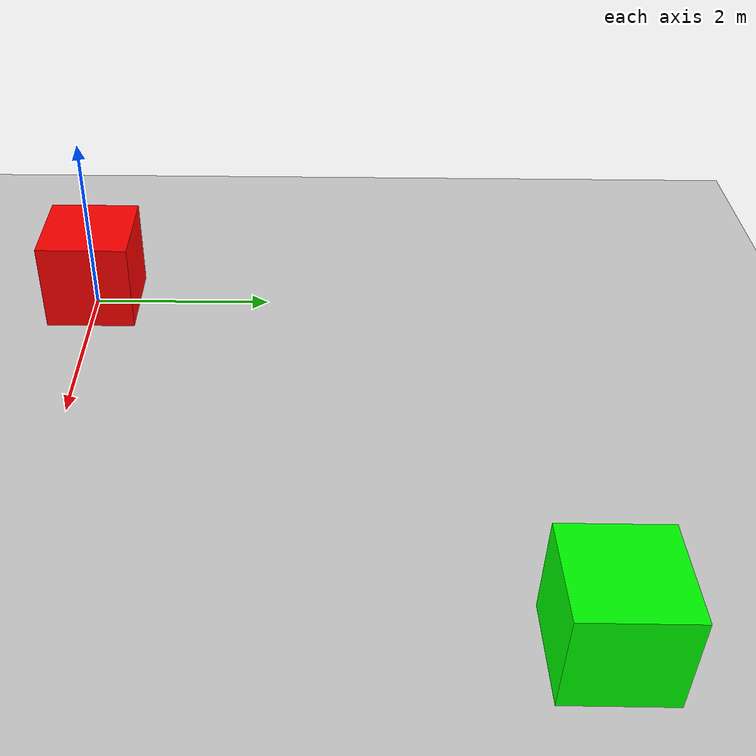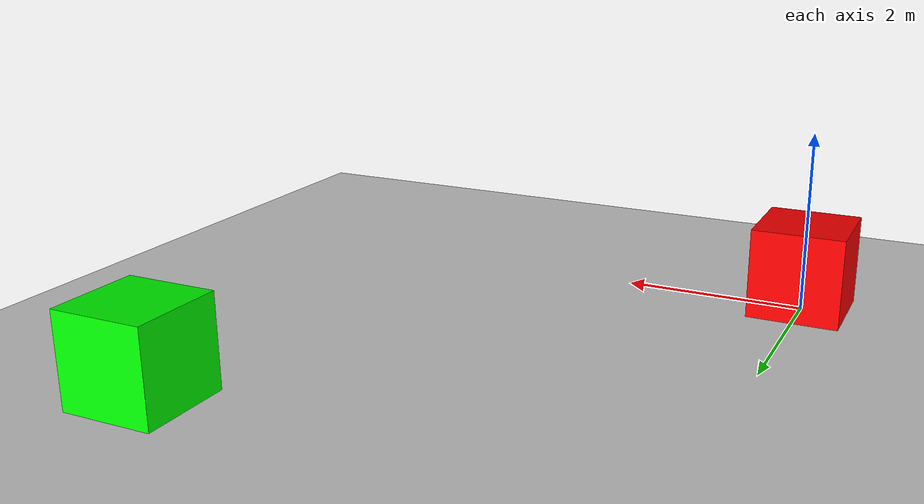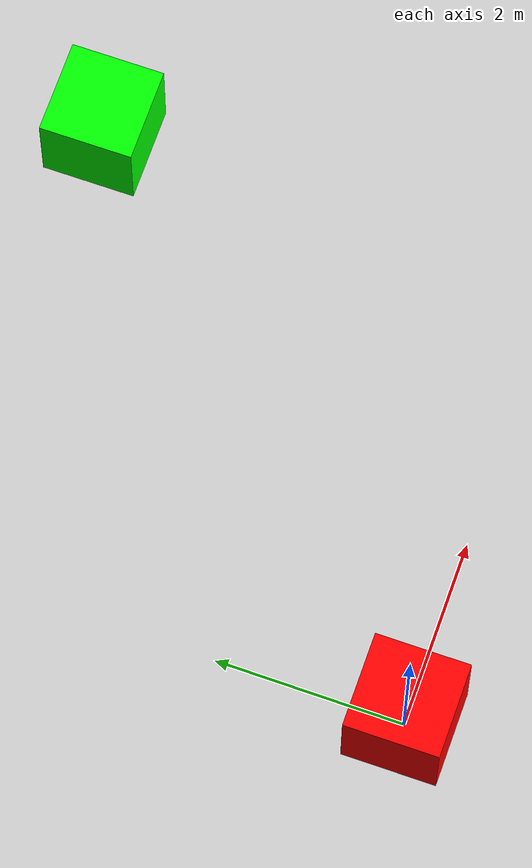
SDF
<?xml version="1.0"?>
<sdf version="1.6">
  <world name="parking_lot">

    <!-- Physics -->
    <physics name="default_physics" default="true" type="ode">
      <max_step_size>0.001</max_step_size>
      <real_time_factor>1.0</real_time_factor>
    </physics>

    <!-- Ground Plane -->
    <model name="ground_plane">
      <static>true</static>
      <link name="link">
        <collision name="collision">
          <geometry>
            <plane>
              <normal>0 0 1</normal>
              <size>40 40</size>
            </plane>
          </geometry>
        </collision>
        <visual name="visual">
          <geometry>
            <plane>
              <normal>0 0 1</normal>
              <size>40 40</size>
            </plane>
          </geometry>
          <material>
            <ambient>0.8 0.8 0.8 1</ambient>
            <diffuse>0.8 0.8 0.8 1</diffuse>
          </material>
        </visual>
      </link>
    </model>

    <!-- Sun Light -->
    <light name="sun" type="directional">
      <cast_shadows>true</cast_shadows>
      <pose>0 0 10 0 0 0</pose>
      <diffuse>0.8 0.8 0.8 1</diffuse>
      <specular>0.2 0.2 0.2 1</specular>
      <attenuation>
        <range>1000</range>
        <constant>0.9</constant>
        <linear>0.01</linear>
        <quadratic>0.001</quadratic>
      </attenuation>
      <direction>-0.5 0.1 -0.9</direction>
    </light>

    <!-- Overhead Camera -->
    <model name="overhead_camera">
      <static>true</static>
      <pose>0 0 25 0 1.57 0</pose>
      <link name="camera_link">
        <sensor name="camera" type="camera">
          <camera>
            <horizontal_fov>1.047</horizontal_fov>
            <image>
              <width>640</width>
              <height>480</height>
            </image>
            <clip>
              <near>0.1</near>
              <far>100</far>
            </clip>
          </camera>
          <always_on>1</always_on>
          <update_rate>30</update_rate>
          <visualize>true</visualize>
          <plugin name="camera_controller" filename="libgazebo_ros_camera.so">
            <ros>
              <namespace>/parking_lot</namespace>
            </ros>
            <camera_name>overhead_camera</camera_name>
            <frame_name>camera_link</frame_name>
            <hack_baseline>0.07</hack_baseline>
          </plugin>
        </sensor>
      </link>
    </model>

    <!-- Test Red Box -->
    <model name="red_box">
      <pose>0 0 0.5 0 0 0</pose>
      <static>true</static>
      <link name="link">
        <collision name="collision">
          <geometry>
            <box>
              <size>1 1 1</size>
            </box>
          </geometry>
        </collision>
        <visual name="visual">
          <geometry>
            <box>
              <size>1 1 1</size>
            </box>
          </geometry>
          <material>
            <ambient>1 0 0 1</ambient>
            <diffuse>1 0 0 1</diffuse>
          </material>
        </visual>
      </link>
    </model>

    <!-- Test Green Box -->
    <model name="green_box">
      <pose>5 5 0.5 0 0 0</pose>
      <static>true</static>
      <link name="link">
        <collision name="collision">
          <geometry>
            <box>
              <size>1 1 1</size>
            </box>
          </geometry>
        </collision>
        <visual name="visual">
          <geometry>
            <box>
              <size>1 1 1</size>
            </box>
          </geometry>
          <material>
            <ambient>0 1 0 1</ambient>
            <diffuse>0 1 0 1</diffuse>
          </material>
        </visual>
      </link>
    </model>

  </world>
</sdf>
